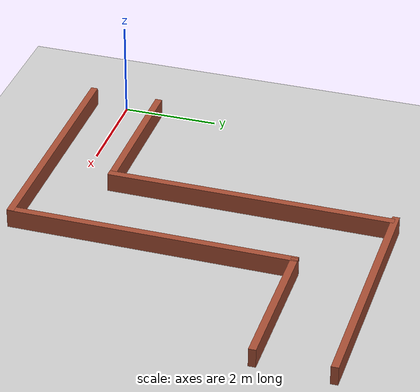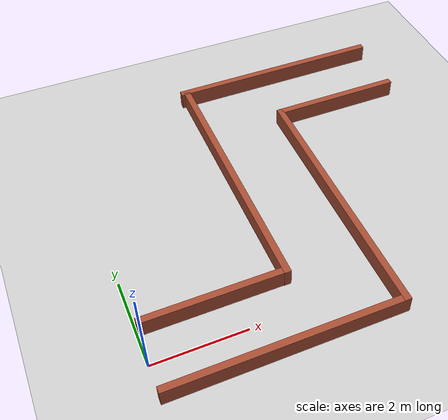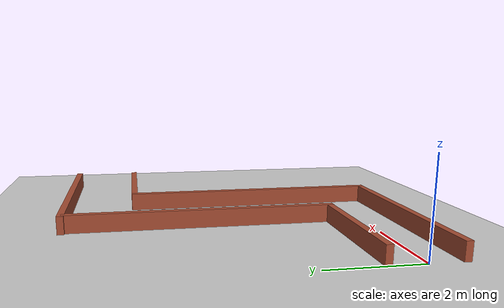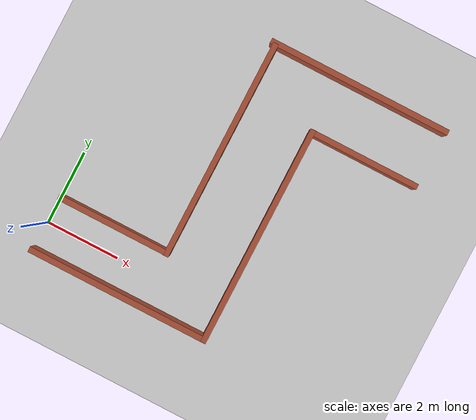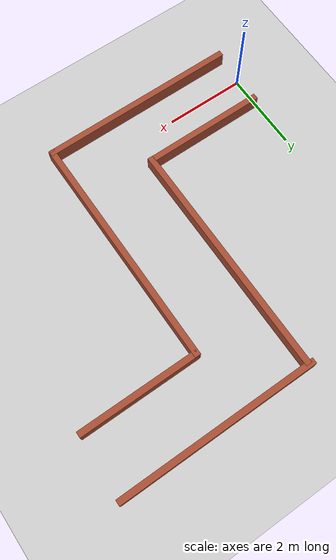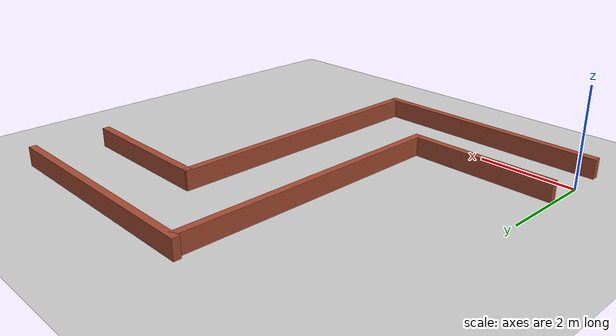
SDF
<sdf version="1.7">
 <world name="default">
  <light name="sun" type="directional">
   <pose>0 0 10 0 -0 0</pose>
   <diffuse>0.8 0.8 0.8 1</diffuse>
   <specular>0.2 0.2 0.2 1</specular>
   <attenuation>
    <range>1000</range>
    <constant>0.9</constant>
    <linear>0.01</linear>
    <quadratic>0.001</quadratic>
   </attenuation>
   <direction>-0.5 0.1 -0.9</direction>
   <spot><inner_angle>0</inner_angle><outer_angle>0</outer_angle><falloff>0</falloff></spot>
  </light>
  <model name="ground_plane">
   <static>1</static>
   <link name="link">
    <collision name="collision">
     <geometry><plane><normal>0 0 1</normal><size>100 100</size></plane></geometry>
     <surface>
      <contact><collide_bitmask>65535</collide_bitmask></contact>
      <friction><ode><mu>100</mu><mu2>50</mu2></ode></friction>
     </surface>
    </collision>
    <visual name="visual">
     <cast_shadows>0</cast_shadows>
     <geometry><plane><normal>0 0 1</normal><size>100 100</size></plane></geometry>
     <material>
      <script><uri>file://media/materials/scripts/gazebo.material</uri><name>Gazebo/Grey</name></script>
     </material>
    </visual>
   </link>
  </model>
  <gravity>0 0 -9.8</gravity>
  <magnetic_field>6e-06 2.3e-05 -4.2e-05</magnetic_field>
  <atmosphere type="adiabatic"/>
  <physics name="default_physics" default="0" type="ode">
   <max_step_size>0.001</max_step_size>
   <real_time_factor>1</real_time_factor>
   <real_time_update_rate>1000</real_time_update_rate>
  </physics>
  <scene><ambient>0.4 0.4 0.4 1</ambient><background>0.7 0.7 0.7 1</background><shadows>1</shadows></scene>
  <audio><device>default</device></audio>
  <spherical_coordinates>
   <surface_model>EARTH_WGS84</surface_model>
   <latitude_deg>0</latitude_deg>
   <longitude_deg>0</longitude_deg>
   <elevation>0</elevation>
   <heading_deg>0</heading_deg>
  </spherical_coordinates>
  <light name="user_point_light_0" type="point">
   <pose>3.72918 0.654795 1 0 -0 0</pose>
   <diffuse>0.5 0.5 0.5 1</diffuse>
   <specular>0.1 0.1 0.1 1</specular>
   <attenuation>
    <range>20</range>
    <constant>0.5</constant>
    <linear>0.01</linear>
    <quadratic>0.001</quadratic>
   </attenuation>
   <cast_shadows>0</cast_shadows>
   <direction>0 0 -1</direction>
   <spot><inner_angle>0</inner_angle><outer_angle>0</outer_angle><falloff>0</falloff></spot>
  </light>
  <light name="user_point_light_1" type="point">
   <pose>3.63107 5.35261 1 0 -0 0</pose>
   <diffuse>0.5 0.5 0.5 1</diffuse>
   <specular>0.1 0.1 0.1 1</specular>
   <attenuation>
    <range>20</range>
    <constant>0.5</constant>
    <linear>0.01</linear>
    <quadratic>0.001</quadratic>
   </attenuation>
   <cast_shadows>0</cast_shadows>
   <direction>0 0 -1</direction>
   <spot><inner_angle>0</inner_angle><outer_angle>0</outer_angle><falloff>0</falloff></spot>
  </light>
  <light name="user_point_light_2" type="point">
   <pose>-3.17028 5.78083 1 0 -0 0</pose>
   <diffuse>0.5 0.5 0.5 1</diffuse>
   <specular>0.1 0.1 0.1 1</specular>
   <attenuation>
    <range>20</range>
    <constant>0.5</constant>
    <linear>0.01</linear>
    <quadratic>0.001</quadratic>
   </attenuation>
   <cast_shadows>0</cast_shadows>
   <direction>0 0 -1</direction>
   <spot><inner_angle>0</inner_angle><outer_angle>0</outer_angle><falloff>0</falloff></spot>
  </light>
  <light name="user_point_light_3" type="point">
   <pose>-3.66941 -0.084508 1 0 -0 0</pose>
   <diffuse>0.5 0.5 0.5 1</diffuse>
   <specular>0.1 0.1 0.1 1</specular>
   <attenuation>
    <range>20</range>
    <constant>0.5</constant>
    <linear>0.01</linear>
    <quadratic>0.001</quadratic>
   </attenuation>
   <cast_shadows>0</cast_shadows>
   <direction>0 0 -1</direction>
   <spot><inner_angle>0</inner_angle><outer_angle>0</outer_angle><falloff>0</falloff></spot>
  </light>
  <light name="user_point_light_4" type="point">
   <pose>0.07662 6.25332 1 0 -0 0</pose>
   <diffuse>0.5 0.5 0.5 1</diffuse>
   <specular>0.1 0.1 0.1 1</specular>
   <attenuation>
    <range>20</range>
    <constant>0.5</constant>
    <linear>0.01</linear>
    <quadratic>0.001</quadratic>
   </attenuation>
   <cast_shadows>0</cast_shadows>
   <direction>0 0 -1</direction>
   <spot><inner_angle>0</inner_angle><outer_angle>0</outer_angle><falloff>0</falloff></spot>
  </light>
  <model name="herradura_dos_vueltas">
   <link name="Wall_3">
    <pose>2.9996 -2.08011 0 0 -0 1.5708</pose>
    <inertial>
     <mass>1</mass>
     <inertia><ixx>1</ixx><ixy>0</ixy><ixz>0</ixz><iyy>1</iyy><iyz>0</iyz><izz>1</izz></inertia>
    </inertial>
    <visual name="Wall_3_Visual">
     <pose>0 0 0.2 0 -0 0</pose>
     <geometry><box><size>3 0.15 0.4</size></box></geometry>
     <material>
      <script><uri>file://media/materials/scripts/gazebo.material</uri><name>Gazebo/Bricks</name></script>
      <ambient>1 1 1 1</ambient>
      <shader type="vertex"><normal_map>__default__</normal_map></shader>
      <diffuse>1 1 1 1</diffuse>
      <specular>0.2 0.2 0.2 1</specular>
      <emissive>0 0 0 1</emissive>
     </material>
     <meta><layer>0</layer></meta>
    </visual>
    <collision name="Wall_3_Collision">
     <pose>0 0 0.2 0 -0 0</pose>
     <geometry><box><size>3 0.15 0.4</size></box></geometry>
     <surface>
      <friction>
       <ode><mu>1</mu><mu2>1</mu2><fdir1>0 0 0</fdir1><slip1>0</slip1><slip2>0</slip2></ode>
       <torsional>
        <coefficient>1</coefficient>
        <patch_radius>0</patch_radius>
        <surface_radius>0</surface_radius>
        <use_patch_radius>1</use_patch_radius>
        <ode><slip>0</slip></ode>
       </torsional>
      </friction>
      <bounce><restitution_coefficient>0</restitution_coefficient><threshold>1e+06</threshold></bounce>
      <contact>
       <collide_without_contact>0</collide_without_contact>
       <collide_without_contact_bitmask>1</collide_without_contact_bitmask>
       <collide_bitmask>1</collide_bitmask>
       <ode>
        <soft_cfm>0</soft_cfm>
        <soft_erp>0.2</soft_erp>
        <kp>1e+13</kp>
        <kd>1</kd>
        <max_vel>0.01</max_vel>
        <min_depth>0</min_depth>
       </ode>
       <bullet>
        <split_impulse>1</split_impulse>
        <split_impulse_penetration_threshold>-0.01</split_impulse_penetration_threshold>
        <soft_cfm>0</soft_cfm>
        <soft_erp>0.2</soft_erp>
        <kp>1e+13</kp>
        <kd>1</kd>
       </bullet>
      </contact>
     </surface>
    </collision>
   </link>
   <link name="Wall_4">
    <pose>0.079952 -0.52067 0 0 -0 3.14159</pose>
    <inertial>
     <mass>1</mass>
     <inertia><ixx>1</ixx><ixy>0</ixy><ixz>0</ixz><iyy>1</iyy><iyz>0</iyz><izz>1</izz></inertia>
    </inertial>
    <visual name="Wall_4_Visual">
     <pose>0 0 0.2 0 -0 0</pose>
     <geometry><box><size>6 0.15 0.4</size></box></geometry>
     <material>
      <script><uri>file://media/materials/scripts/gazebo.material</uri><name>Gazebo/Bricks</name></script>
      <ambient>1 1 1 1</ambient>
      <shader type="vertex"><normal_map>__default__</normal_map></shader>
      <diffuse>1 1 1 1</diffuse>
      <specular>0.2 0.2 0.2 1</specular>
      <emissive>0 0 0 1</emissive>
     </material>
     <meta><layer>0</layer></meta>
    </visual>
    <collision name="Wall_4_Collision">
     <pose>0 0 0.2 0 -0 0</pose>
     <geometry><box><size>6 0.15 0.4</size></box></geometry>
     <surface>
      <friction>
       <ode><mu>1</mu><mu2>1</mu2><fdir1>0 0 0</fdir1><slip1>0</slip1><slip2>0</slip2></ode>
       <torsional>
        <coefficient>1</coefficient>
        <patch_radius>0</patch_radius>
        <surface_radius>0</surface_radius>
        <use_patch_radius>1</use_patch_radius>
        <ode><slip>0</slip></ode>
       </torsional>
      </friction>
      <bounce><restitution_coefficient>0</restitution_coefficient><threshold>1e+06</threshold></bounce>
      <contact>
       <collide_without_contact>0</collide_without_contact>
       <collide_without_contact_bitmask>1</collide_without_contact_bitmask>
       <collide_bitmask>1</collide_bitmask>
       <ode>
        <soft_cfm>0</soft_cfm>
        <soft_erp>0.2</soft_erp>
        <kp>1e+13</kp>
        <kd>1</kd>
        <max_vel>0.01</max_vel>
        <min_depth>0</min_depth>
       </ode>
       <bullet>
        <split_impulse>1</split_impulse>
        <split_impulse_penetration_threshold>-0.01</split_impulse_penetration_threshold>
        <soft_cfm>0</soft_cfm>
        <soft_erp>0.2</soft_erp>
        <kp>1e+13</kp>
        <kd>1</kd>
       </bullet>
      </contact>
     </surface>
    </collision>
   </link>
   <link name="Wall_4_clone">
    <pose>1.56902 1.30695 0 0 -0 -3.14159</pose>
    <inertial>
     <mass>1</mass>
     <inertia><ixx>1</ixx><ixy>0</ixy><ixz>0</ixz><iyy>1</iyy><iyz>0</iyz><izz>1</izz></inertia>
    </inertial>
    <visual name="Wall_4_Visual">
     <pose>0 0 0.2 0 -0 0</pose>
     <geometry><box><size>6 0.15 0.4</size></box></geometry>
     <material>
      <script><uri>file://media/materials/scripts/gazebo.material</uri><name>Gazebo/Bricks</name></script>
      <ambient>1 1 1 1</ambient>
      <shader type="vertex"><normal_map>__default__</normal_map></shader>
      <diffuse>1 1 1 1</diffuse>
      <specular>0.2 0.2 0.2 1</specular>
      <emissive>0 0 0 1</emissive>
     </material>
     <meta><layer>0</layer></meta>
    </visual>
    <collision name="Wall_4_Collision">
     <pose>0 0 0.2 0 -0 0</pose>
     <geometry><box><size>6 0.15 0.4</size></box></geometry>
     <surface>
      <friction>
       <ode><mu>1</mu><mu2>1</mu2><fdir1>0 0 0</fdir1><slip1>0</slip1><slip2>0</slip2></ode>
       <torsional>
        <coefficient>1</coefficient>
        <patch_radius>0</patch_radius>
        <surface_radius>0</surface_radius>
        <use_patch_radius>1</use_patch_radius>
        <ode><slip>0</slip></ode>
       </torsional>
      </friction>
      <bounce><restitution_coefficient>0</restitution_coefficient><threshold>1e+06</threshold></bounce>
      <contact>
       <collide_without_contact>0</collide_without_contact>
       <collide_without_contact_bitmask>1</collide_without_contact_bitmask>
       <collide_bitmask>1</collide_bitmask>
       <ode>
        <soft_cfm>0</soft_cfm>
        <soft_erp>0.2</soft_erp>
        <kp>1e+13</kp>
        <kd>1</kd>
        <max_vel>0.01</max_vel>
        <min_depth>0</min_depth>
       </ode>
       <bullet>
        <split_impulse>1</split_impulse>
        <split_impulse_penetration_threshold>-0.01</split_impulse_penetration_threshold>
        <soft_cfm>0</soft_cfm>
        <soft_erp>0.2</soft_erp>
        <kp>1e+13</kp>
        <kd>1</kd>
       </bullet>
      </contact>
     </surface>
    </collision>
   </link>
   <link name="Wall_5">
    <pose>-1.36205 2.77557 0 0 0 -1.5708</pose>
    <inertial>
     <mass>1</mass>
     <inertia><ixx>1</ixx><ixy>0</ixy><ixz>0</ixz><iyy>1</iyy><iyz>0</iyz><izz>1</izz></inertia>
    </inertial>
    <visual name="Wall_5_Visual">
     <pose>0 0 0.2 0 -0 0</pose>
     <geometry><box><size>3 0.15 0.4</size></box></geometry>
     <material>
      <script><uri>file://media/materials/scripts/gazebo.material</uri><name>Gazebo/Bricks</name></script>
      <ambient>1 1 1 1</ambient>
      <shader type="vertex"><normal_map>__default__</normal_map></shader>
      <diffuse>1 1 1 1</diffuse>
      <specular>0.2 0.2 0.2 1</specular>
      <emissive>0 0 0 1</emissive>
     </material>
     <meta><layer>0</layer></meta>
    </visual>
    <collision name="Wall_5_Collision">
     <pose>0 0 0.2 0 -0 0</pose>
     <geometry><box><size>3 0.15 0.4</size></box></geometry>
     <surface>
      <friction>
       <ode><mu>1</mu><mu2>1</mu2><fdir1>0 0 0</fdir1><slip1>0</slip1><slip2>0</slip2></ode>
       <torsional>
        <coefficient>1</coefficient>
        <patch_radius>0</patch_radius>
        <surface_radius>0</surface_radius>
        <use_patch_radius>1</use_patch_radius>
        <ode><slip>0</slip></ode>
       </torsional>
      </friction>
      <bounce><restitution_coefficient>0</restitution_coefficient><threshold>1e+06</threshold></bounce>
      <contact>
       <collide_without_contact>0</collide_without_contact>
       <collide_without_contact_bitmask>1</collide_without_contact_bitmask>
       <collide_bitmask>1</collide_bitmask>
       <ode>
        <soft_cfm>0</soft_cfm>
        <soft_erp>0.2</soft_erp>
        <kp>1e+13</kp>
        <kd>1</kd>
        <max_vel>0.01</max_vel>
        <min_depth>0</min_depth>
       </ode>
       <bullet>
        <split_impulse>1</split_impulse>
        <split_impulse_penetration_threshold>-0.01</split_impulse_penetration_threshold>
        <soft_cfm>0</soft_cfm>
        <soft_erp>0.2</soft_erp>
        <kp>1e+13</kp>
        <kd>1</kd>
       </bullet>
      </contact>
     </surface>
    </collision>
   </link>
   <link name="Wall_7">
    <pose>4.49843 -1.13075 0 0 -0 1.5708</pose>
    <inertial>
     <mass>1</mass>
     <inertia><ixx>1</ixx><ixy>0</ixy><ixz>0</ixz><iyy>1</iyy><iyz>0</iyz><izz>1</izz></inertia>
    </inertial>
    <visual name="Wall_7_Visual">
     <pose>0 0 0.2 0 -0 0</pose>
     <geometry><box><size>5 0.15 0.4</size></box></geometry>
     <material>
      <script><uri>file://media/materials/scripts/gazebo.material</uri><name>Gazebo/Bricks</name></script>
      <ambient>1 1 1 1</ambient>
      <shader type="vertex"><normal_map>__default__</normal_map></shader>
      <diffuse>1 1 1 1</diffuse>
      <specular>0.2 0.2 0.2 1</specular>
      <emissive>0 0 0 1</emissive>
     </material>
     <meta><layer>0</layer></meta>
    </visual>
    <collision name="Wall_7_Collision">
     <pose>0 0 0.2 0 -0 0</pose>
     <geometry><box><size>5 0.15 0.4</size></box></geometry>
     <surface>
      <friction>
       <ode><mu>1</mu><mu2>1</mu2><fdir1>0 0 0</fdir1><slip1>0</slip1><slip2>0</slip2></ode>
       <torsional>
        <coefficient>1</coefficient>
        <patch_radius>0</patch_radius>
        <surface_radius>0</surface_radius>
        <use_patch_radius>1</use_patch_radius>
        <ode><slip>0</slip></ode>
       </torsional>
      </friction>
      <bounce><restitution_coefficient>0</restitution_coefficient><threshold>1e+06</threshold></bounce>
      <contact>
       <collide_without_contact>0</collide_without_contact>
       <collide_without_contact_bitmask>1</collide_without_contact_bitmask>
       <collide_bitmask>1</collide_bitmask>
       <ode>
        <soft_cfm>0</soft_cfm>
        <soft_erp>0.2</soft_erp>
        <kp>1e+13</kp>
        <kd>1</kd>
        <max_vel>0.01</max_vel>
        <min_depth>0</min_depth>
       </ode>
       <bullet>
        <split_impulse>1</split_impulse>
        <split_impulse_penetration_threshold>-0.01</split_impulse_penetration_threshold>
        <soft_cfm>0</soft_cfm>
        <soft_erp>0.2</soft_erp>
        <kp>1e+13</kp>
        <kd>1</kd>
       </bullet>
      </contact>
     </surface>
    </collision>
   </link>
   <link name="Wall_9">
    <pose>-2.92209 1.83309 0 0 0 -1.5708</pose>
    <inertial>
     <mass>1</mass>
     <inertia><ixx>1</ixx><ixy>0</ixy><ixz>0</ixz><iyy>1</iyy><iyz>0</iyz><izz>1</izz></inertia>
    </inertial>
    <visual name="Wall_9_Visual">
     <pose>0 0 0.2 0 -0 0</pose>
     <geometry><box><size>5 0.15 0.4</size></box></geometry>
     <material>
      <script><uri>file://media/materials/scripts/gazebo.material</uri><name>Gazebo/Bricks</name></script>
      <ambient>1 1 1 1</ambient>
      <shader type="vertex"><normal_map>__default__</normal_map></shader>
      <diffuse>1 1 1 1</diffuse>
      <specular>0.2 0.2 0.2 1</specular>
      <emissive>0 0 0 1</emissive>
     </material>
     <meta><layer>0</layer></meta>
    </visual>
    <collision name="Wall_9_Collision">
     <pose>0 0 0.2 0 -0 0</pose>
     <geometry><box><size>5 0.15 0.4</size></box></geometry>
     <surface>
      <friction>
       <ode><mu>1</mu><mu2>1</mu2><fdir1>0 0 0</fdir1><slip1>0</slip1><slip2>0</slip2></ode>
       <torsional>
        <coefficient>1</coefficient>
        <patch_radius>0</patch_radius>
        <surface_radius>0</surface_radius>
        <use_patch_radius>1</use_patch_radius>
        <ode><slip>0</slip></ode>
       </torsional>
      </friction>
      <bounce><restitution_coefficient>0</restitution_coefficient><threshold>1e+06</threshold></bounce>
      <contact>
       <collide_without_contact>0</collide_without_contact>
       <collide_without_contact_bitmask>1</collide_without_contact_bitmask>
       <collide_bitmask>1</collide_bitmask>
       <ode>
        <soft_cfm>0</soft_cfm>
        <soft_erp>0.2</soft_erp>
        <kp>1e+13</kp>
        <kd>1</kd>
        <max_vel>0.01</max_vel>
        <min_depth>0</min_depth>
       </ode>
       <bullet>
        <split_impulse>1</split_impulse>
        <split_impulse_penetration_threshold>-0.01</split_impulse_penetration_threshold>
        <soft_cfm>0</soft_cfm>
        <soft_erp>0.2</soft_erp>
        <kp>1e+13</kp>
        <kd>1</kd>
       </bullet>
      </contact>
     </surface>
    </collision>
   </link>
   <static>1</static>
   <pose>3.61165 3.75219 0 0 0 -1.5708</pose>
  </model>
  <light name="user_spot_light_0" type="spot">
   <pose>3.06767 0.610242 1 0 -0 0</pose>
   <diffuse>0.5 0.5 0.5 1</diffuse>
   <specular>0.1 0.1 0.1 1</specular>
   <direction>0 0 -1</direction>
   <attenuation>
    <range>20</range>
    <constant>0.5</constant>
    <linear>0.01</linear>
    <quadratic>0.001</quadratic>
   </attenuation>
   <cast_shadows>0</cast_shadows>
   <spot><inner_angle>0.6</inner_angle><outer_angle>1</outer_angle><falloff>1</falloff></spot>
  </light>
  <light name="user_spot_light_1" type="spot">
   <pose>4.89038 5.01253 1 0 -0 0</pose>
   <diffuse>0.5 0.5 0.5 1</diffuse>
   <specular>0.1 0.1 0.1 1</specular>
   <direction>0 0 -1</direction>
   <attenuation>
    <range>20</range>
    <constant>0.5</constant>
    <linear>0.01</linear>
    <quadratic>0.001</quadratic>
   </attenuation>
   <cast_shadows>0</cast_shadows>
   <spot><inner_angle>0.6</inner_angle><outer_angle>1</outer_angle><falloff>1</falloff></spot>
  </light>
  <light name="user_spot_light_2" type="spot">
   <pose>7.76534 5.08379 1 0 -0 0</pose>
   <diffuse>0.5 0.5 0.5 1</diffuse>
   <specular>0.1 0.1 0.1 1</specular>
   <direction>0 0 -1</direction>
   <attenuation>
    <range>20</range>
    <constant>0.5</constant>
    <linear>0.01</linear>
    <quadratic>0.001</quadratic>
   </attenuation>
   <cast_shadows>0</cast_shadows>
   <spot><inner_angle>0.6</inner_angle><outer_angle>1</outer_angle><falloff>1</falloff></spot>
  </light>
  <light name="user_spot_light_3" type="spot">
   <pose>7.94148 6.71761 1 0 -0 0</pose>
   <diffuse>0.5 0.5 0.5 1</diffuse>
   <specular>0.1 0.1 0.1 1</specular>
   <direction>0 0 -1</direction>
   <attenuation>
    <range>20</range>
    <constant>0.5</constant>
    <linear>0.01</linear>
    <quadratic>0.001</quadratic>
   </attenuation>
   <cast_shadows>0</cast_shadows>
   <spot><inner_angle>0.6</inner_angle><outer_angle>1</outer_angle><falloff>1</falloff></spot>
  </light>
 </world>
</sdf>
